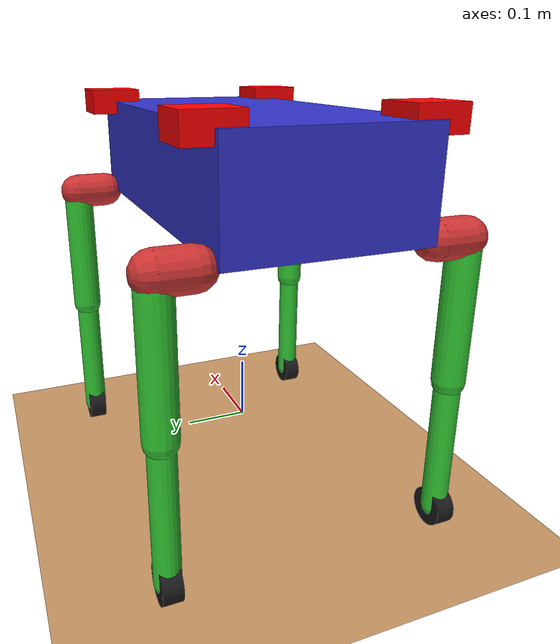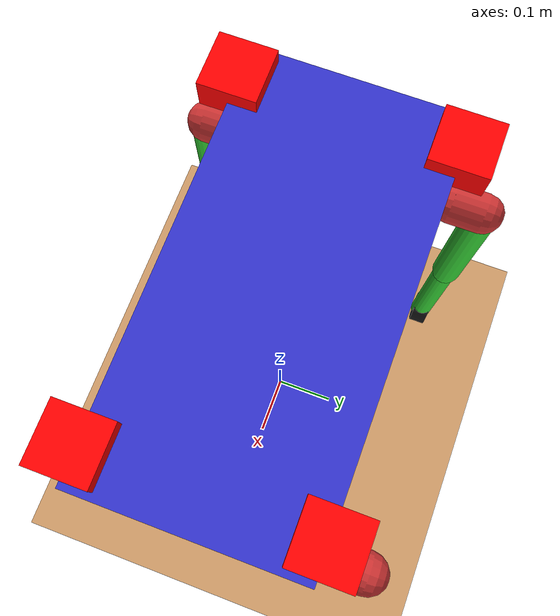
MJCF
<mujoco model="quadruped_forward_wheels">
                <compiler angle="radian" coordinate="local"/>
                <option timestep="0.001" gravity="0 0 -9.81"/>

                <default>
                    <geom rgba="0.8 0.6 0.4 1" friction="1 0.005 0.0001"/>
                    <joint damping="5.0" armature="0.1"/>
                </default>

                <asset>
                    <texture name="grid" type="2d" builtin="checker" width="512" height="512"
                            rgb1=".1 .2 .3" rgb2=".2 .3 .4"/>
                    <material name="grid" texture="grid" texrepeat="1 1" texuniform="true"
                            reflectance=".2"/>
                </asset>

                <worldbody>
                    <light pos="0 0 1.5" dir="0 0 -1" diffuse="0.8 0.8 0.8"/>
                    <geom name="floor" pos="0 0 -0.1" size="5 5 .05" type="plane" material="grid"/>

                    <body name="base" pos="0 0 0.45">
                        <freejoint/>
                        <geom name="torso" type="box" size="0.3 0.15 0.08" mass="18.0" rgba="0.2 0.2 0.8 1"/>
                        <geom name="torso_imu" type="sphere" size="0.02" pos="0 0 0" mass="0.1" rgba="1 0 0 1"/>

                        <!-- Thruster sites at four corners of torso (quadcopter style) -->
                        <site name="fl_thruster_site" pos="0.25 0.15 0.08" size="0.04 0.04 0.02" type="box" rgba="1 0 0 1"/>
                        <site name="fr_thruster_site" pos="0.25 -0.15 0.08" size="0.04 0.04 0.02" type="box" rgba="1 0 0 1"/>
                        <site name="hl_thruster_site" pos="-0.25 0.15 0.08" size="0.04 0.04 0.02" type="box" rgba="1 0 0 1"/>
                        <site name="hr_thruster_site" pos="-0.25 -0.15 0.08" size="0.04 0.04 0.02" type="box" rgba="1 0 0 1"/>

                        <!-- ===== FRONT LEFT ===== -->
                        <body name="fl_hip" pos="0.27 0.17 -0.08">
                            <joint name="fl_hip_joint" type="hinge" axis="0 0 1" range="-0.5 0.5" damping="1.0"/>
                            <geom type="capsule" fromto="0 0 0 0 0.05 0" size="0.03" mass="1.0" rgba="0.8 0.2 0.2 1"/>

                            <body name="fl_thigh" pos="0 0.05 0">
                                <joint name="fl_thigh_joint" type="hinge" axis="0 1 0" range="-1.57 1.57" damping="1.0"/>
                                <geom type="capsule" fromto="0 0 0 0 0 -0.22" size="0.025" mass="1.5" rgba="0.2 0.8 0.2 1"/>

                                <body name="fl_shank" pos="0 0 -0.22">
                                    <joint name="fl_shank_joint" type="hinge" axis="0 1 0" range="-2.5 -0.2" damping="1.0"/>
                                    <geom type="capsule" fromto="0 0 0 0 0 -0.22" size="0.02" mass="1.0" rgba="0.2 0.8 0.2 1"/>

                                    <!-- Normal bidirectional wheel -->
                                    <body name="fl_wheel" pos="0 0 -0.22">
                                        <joint name="fl_wheel_joint" type="hinge" axis="0 1 0"
                                            damping="0.5"
                                            frictionloss="0.2"/>

                                        <geom name="fl_wheel_geom" type="cylinder" size="0.03 0.015"
                                            euler="1.5708 0 0" rgba="0.1 0.1 0.1 1"
                                            friction="1.5 0.005 0.0001"/>
                                    </body>
                                </body>
                            </body>
                        </body>

                        <!-- ===== FRONT RIGHT ===== -->
                        <body name="fr_hip" pos="0.27 -0.17 -0.08">
                            <joint name="fr_hip_joint" type="hinge" axis="0 0 1" range="-0.5 0.5" damping="1.0"/>
                            <geom type="capsule" fromto="0 0 0 0 -0.05 0" size="0.03" mass="1.0" rgba="0.8 0.2 0.2 1"/>

                            <body name="fr_thigh" pos="0 -0.05 0">
                                <joint name="fr_thigh_joint" type="hinge" axis="0 1 0" range="-1.57 1.57" damping="1.0"/>
                                <geom type="capsule" fromto="0 0 0 0 0 -0.22" size="0.025" mass="1.5" rgba="0.2 0.8 0.2 1"/>

                                <body name="fr_shank" pos="0 0 -0.22">
                                    <joint name="fr_shank_joint" type="hinge" axis="0 1 0" range="-2.5 -0.2" damping="1.0"/>
                                    <geom type="capsule" fromto="0 0 0 0 0 -0.22" size="0.02" mass="1.0" rgba="0.2 0.8 0.2 1"/>

                                    <body name="fr_wheel" pos="0 0 -0.22">
                                        <joint name="fr_wheel_joint" type="hinge" axis="0 1 0"
                                            damping="0.5"
                                            frictionloss="0.2"/>

                                        <geom name="fr_wheel_geom" type="cylinder" size="0.03 0.015"
                                            euler="1.5708 0 0" rgba="0.1 0.1 0.1 1"
                                            friction="1.5 0.005 0.0001"/>
                                    </body>
                                </body>
                            </body>
                        </body>

                        <!-- ===== HIND LEFT ===== -->
                        <body name="hl_hip" pos="-0.27 0.17 -0.08">
                            <joint name="hl_hip_joint" type="hinge" axis="0 0 1" range="-0.5 0.5" damping="1.0"/>
                            <geom type="capsule" fromto="0 0 0 0 0.05 0" size="0.03" mass="1.0" rgba="0.8 0.2 0.2 1"/>

                            <body name="hl_thigh" pos="0 0.05 0">
                                <joint name="hl_thigh_joint" type="hinge" axis="0 1 0" range="-1.57 1.57" damping="1.0"/>
                                <geom type="capsule" fromto="0 0 0 0 0 -0.22" size="0.025" mass="1.5" rgba="0.2 0.8 0.2 1"/>

                                <body name="hl_shank" pos="0 0 -0.22">
                                    <joint name="hl_shank_joint" type="hinge" axis="0 1 0" range="-2.5 -0.2" damping="1.0"/>
                                    <geom type="capsule" fromto="0 0 0 0 0 -0.22" size="0.02" mass="1.0" rgba="0.2 0.8 0.2 1"/>

                                    <body name="hl_wheel" pos="0 0 -0.22">
                                        <joint name="hl_wheel_joint" type="hinge" axis="0 1 0"
                                            damping="0.5"
                                            frictionloss="0.2"/>

                                        <geom name="hl_wheel_geom" type="cylinder" size="0.03 0.015"
                                            euler="1.5708 0 0" rgba="0.1 0.1 0.1 1"
                                            friction="1.5 0.005 0.0001"/>
                                    </body>
                                </body>
                            </body>
                        </body>

                        <!-- ===== HIND RIGHT ===== -->
                        <body name="hr_hip" pos="-0.27 -0.17 -0.08">
                            <joint name="hr_hip_joint" type="hinge" axis="0 0 1" range="-0.5 0.5" damping="1.0"/>
                            <geom type="capsule" fromto="0 0 0 0 -0.05 0" size="0.03" mass="1.0" rgba="0.8 0.2 0.2 1"/>

                            <body name="hr_thigh" pos="0 -0.05 0">
                                <joint name="hr_thigh_joint" type="hinge" axis="0 1 0" range="-1.57 1.57" damping="1.0"/>
                                <geom type="capsule" fromto="0 0 0 0 0 -0.22" size="0.025" mass="1.5" rgba="0.2 0.8 0.2 1"/>

                                <body name="hr_shank" pos="0 0 -0.22">
                                    <joint name="hr_shank_joint" type="hinge" axis="0 1 0" range="-2.5 -0.2" damping="1.0"/>
                                    <geom type="capsule" fromto="0 0 0 0 0 -0.22" size="0.02" mass="1.0" rgba="0.2 0.8 0.2 1"/>

                                    <body name="hr_wheel" pos="0 0 -0.22">
                                        <joint name="hr_wheel_joint" type="hinge" axis="0 1 0"
                                            damping="0.5"
                                            frictionloss="0.2"/>

                                        <geom name="hr_wheel_geom" type="cylinder" size="0.03 0.015"
                                            euler="1.5708 0 0" rgba="0.1 0.1 0.1 1"
                                            friction="1.5 0.005 0.0001"/>
                                    </body>
                                </body>
                            </body>
                        </body>
                    </body>
                </worldbody>

                <actuator>
                    <!-- Leg motors (12 total) -->
                    <motor name="fl_hip_motor" joint="fl_hip_joint" gear="50" ctrllimited="true" ctrlrange="-50 50"/>
                    <motor name="fl_thigh_motor" joint="fl_thigh_joint" gear="150" ctrllimited="true" ctrlrange="-150 150"/>
                    <motor name="fl_shank_motor" joint="fl_shank_joint" gear="150" ctrllimited="true" ctrlrange="-150 150"/>

                    <motor name="fr_hip_motor" joint="fr_hip_joint" gear="50" ctrllimited="true" ctrlrange="-50 50"/>
                    <motor name="fr_thigh_motor" joint="fr_thigh_joint" gear="150" ctrllimited="true" ctrlrange="-150 150"/>
                    <motor name="fr_shank_motor" joint="fr_shank_joint" gear="150" ctrllimited="true" ctrlrange="-150 150"/>

                    <motor name="hl_hip_motor" joint="hl_hip_joint" gear="50" ctrllimited="true" ctrlrange="-50 50"/>
                    <motor name="hl_thigh_motor" joint="hl_thigh_joint" gear="150" ctrllimited="true" ctrlrange="-150 150"/>
                    <motor name="hl_shank_motor" joint="hl_shank_joint" gear="150" ctrllimited="true" ctrlrange="-150 150"/>

                    <motor name="hr_hip_motor" joint="hr_hip_joint" gear="50" ctrllimited="true" ctrlrange="-50 50"/>
                    <motor name="hr_thigh_motor" joint="hr_thigh_joint" gear="150" ctrllimited="true" ctrlrange="-150 150"/>
                    <motor name="hr_shank_motor" joint="hr_shank_joint" gear="150" ctrllimited="true" ctrlrange="-150 150"/>

                    <!-- Optional: Wheel motors for active drive (bidirectional) -->
                    <motor name="fl_wheel_motor" joint="fl_wheel_joint" gear="5" ctrllimited="true" ctrlrange="-10 10"/>
                    <motor name="fr_wheel_motor" joint="fr_wheel_joint" gear="5" ctrllimited="true" ctrlrange="-10 10"/>
                    <motor name="hl_wheel_motor" joint="hl_wheel_joint" gear="5" ctrllimited="true" ctrlrange="-10 10"/>
                    <motor name="hr_wheel_motor" joint="hr_wheel_joint" gear="5" ctrllimited="true" ctrlrange="-10 10"/>

                    <!-- Thruster actuators (apply vertical forces at hip sites) -->
                    <!-- Canted for Yaw Authority: FL/HL point Left (+Y), FR/HR point Right (-Y) -->
                    <general name="fl_thruster" site="fl_thruster_site" gear="0 0.5 1 0 0 0" ctrllimited="true" ctrlrange="0 500" dyntype="none" gaintype="fixed" biastype="none"/>
                    <general name="fr_thruster" site="fr_thruster_site" gear="0 -0.5 1 0 0 0" ctrllimited="true" ctrlrange="0 500" dyntype="none" gaintype="fixed" biastype="none"/>
                    <general name="hl_thruster" site="hl_thruster_site" gear="0 0.5 1 0 0 0" ctrllimited="true" ctrlrange="0 500" dyntype="none" gaintype="fixed" biastype="none"/>
                    <general name="hr_thruster" site="hr_thruster_site" gear="0 -0.5 1 0 0 0" ctrllimited="true" ctrlrange="0 500" dyntype="none" gaintype="fixed" biastype="none"/>
                </actuator>
            </mujoco>
